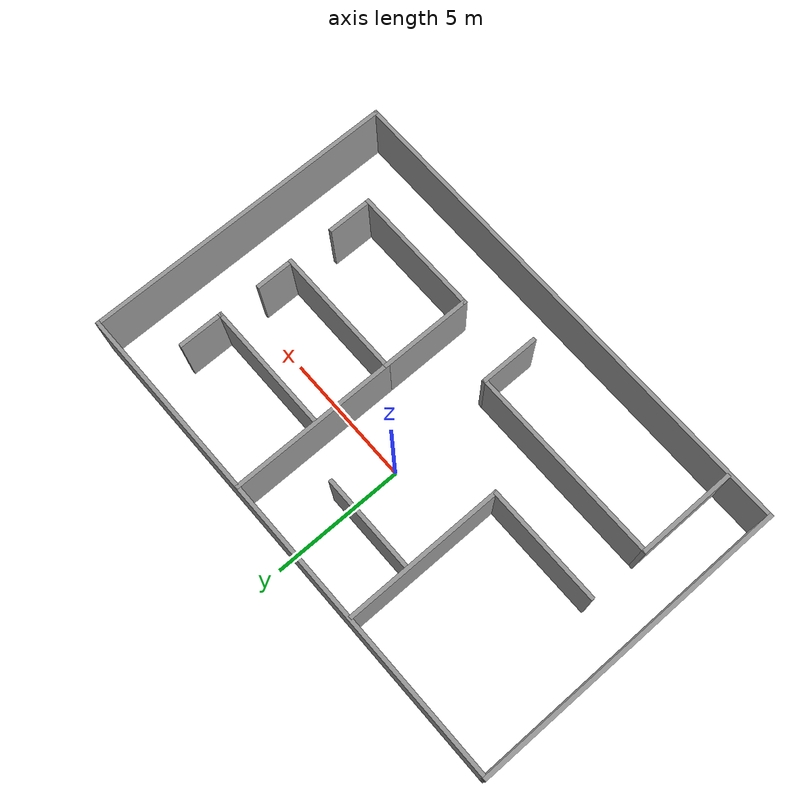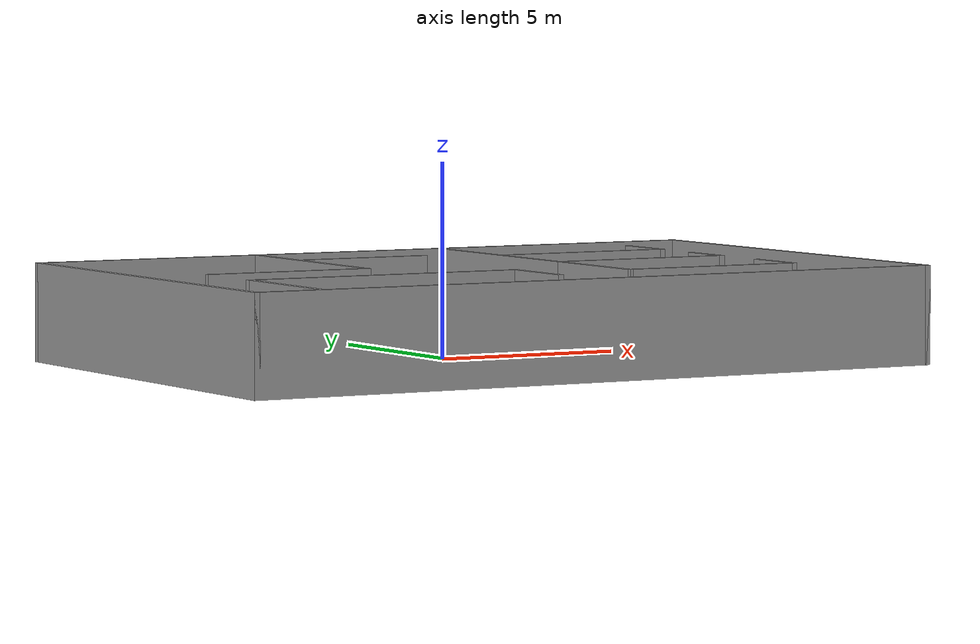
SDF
<?xml version='1.0'?>
<sdf version='1.6'>
  <model name='lab_envirenment'>
    <pose frame=''>0.225157 -1.55416 0 0 -0 0</pose>
    <link name='Wall_13'>
      <collision name='Wall_13_Collision'>
        <geometry>
          <box>
            <size>6 0.15 2.5</size>
          </box>
        </geometry>
        <pose frame=''>0 0 1.25 0 -0 0</pose>
      </collision>
      <visual name='Wall_13_Visual'>
        <pose frame=''>0 0 1.25 0 -0 0</pose>
        <geometry>
          <box>
            <size>6 0.15 2.5</size>
          </box>
        </geometry>
        <material>
          <script>
            <uri>file://media/materials/scripts/gazebo.material</uri>
            <name>Gazebo/Grey</name>
          </script>
          <ambient>1 1 1 1</ambient>
        </material>
        <meta>
          <layer>0</layer>
        </meta>
      </visual>
      <pose frame=''>-3.27349 2.91466 0 0 -0 -1.5708</pose>
    </link>
    <link name='Wall_14'>
      <collision name='Wall_14_Collision'>
        <geometry>
          <box>
            <size>4.5 0.15 2.5</size>
          </box>
        </geometry>
        <pose frame=''>0 0 1.25 0 -0 0</pose>
      </collision>
      <visual name='Wall_14_Visual'>
        <pose frame=''>0 0 1.25 0 -0 0</pose>
        <geometry>
          <box>
            <size>4.5 0.15 2.5</size>
          </box>
        </geometry>
        <material>
          <script>
            <uri>file://media/materials/scripts/gazebo.material</uri>
            <name>Gazebo/Grey</name>
          </script>
          <ambient>1 1 1 1</ambient>
        </material>
        <meta>
          <layer>0</layer>
        </meta>
      </visual>
      <pose frame=''>-5.44849 -0.010343 0 0 -0 3.14159</pose>
    </link>
    <link name='Wall_17'>
      <collision name='Wall_17_Collision'>
        <geometry>
          <box>
            <size>6.25 0.15 2.5</size>
          </box>
        </geometry>
        <pose frame=''>0 0 1.25 0 -0 0</pose>
      </collision>
      <visual name='Wall_17_Visual'>
        <pose frame=''>0 0 1.25 0 -0 0</pose>
        <geometry>
          <box>
            <size>6.25 0.15 2.5</size>
          </box>
        </geometry>
        <material>
          <script>
            <uri>file://media/materials/scripts/gazebo.material</uri>
            <name>Gazebo/Grey</name>
          </script>
          <ambient>1 1 1 1</ambient>
        </material>
        <meta>
          <layer>0</layer>
        </meta>
      </visual>
      <pose frame=''>2.16071 2.86033 0 0 -0 -1.5708</pose>
    </link>
    <link name='Wall_18'>
      <collision name='Wall_18_Collision'>
        <geometry>
          <box>
            <size>5 0.15 2.5</size>
          </box>
        </geometry>
        <pose frame=''>0 0 1.25 0 -0 0</pose>
      </collision>
      <visual name='Wall_18_Visual'>
        <pose frame=''>0 0 1.25 0 -0 0</pose>
        <geometry>
          <box>
            <size>5 0.15 2.5</size>
          </box>
        </geometry>
        <material>
          <script>
            <uri>file://media/materials/scripts/gazebo.material</uri>
            <name>Gazebo/Grey</name>
          </script>
          <ambient>1 1 1 1</ambient>
        </material>
        <meta>
          <layer>0</layer>
        </meta>
      </visual>
      <pose frame=''>4.58571 -0.189671 0 0 -0 0</pose>
    </link>
    <link name='Wall_2'>
      <collision name='Wall_2_Collision'>
        <geometry>
          <box>
            <size>19 0.15 2.5</size>
          </box>
        </geometry>
        <pose frame=''>0 0 1.25 0 -0 0</pose>
      </collision>
      <visual name='Wall_2_Visual'>
        <pose frame=''>0 0 1.25 0 -0 0</pose>
        <geometry>
          <box>
            <size>19 0.15 2.5</size>
          </box>
        </geometry>
        <material>
          <script>
            <uri>file://media/materials/scripts/gazebo.material</uri>
            <name>Gazebo/Grey</name>
          </script>
          <ambient>1 1 1 1</ambient>
        </material>
        <meta>
          <layer>0</layer>
        </meta>
      </visual>
      <pose frame=''>0 5.925 0 0 -0 0</pose>
    </link>
    <link name='Wall_20'>
      <collision name='Wall_20_Collision'>
        <geometry>
          <box>
            <size>3.5 0.15 2.5</size>
          </box>
        </geometry>
        <pose frame=''>0 0 1.25 0 -0 0</pose>
      </collision>
      <visual name='Wall_20_Visual'>
        <pose frame=''>0 0 1.25 0 -0 0</pose>
        <geometry>
          <box>
            <size>3.5 0.15 2.5</size>
          </box>
        </geometry>
        <material>
          <script>
            <uri>file://media/materials/scripts/gazebo.material</uri>
            <name>Gazebo/Grey</name>
          </script>
          <ambient>1 1 1 1</ambient>
        </material>
        <meta>
          <layer>0</layer>
        </meta>
      </visual>
      <pose frame=''>2.16071 -1.86467 0 0 -0 -1.5708</pose>
    </link>
    <link name='Wall_21'>
      <collision name='Wall_21_Collision'>
        <geometry>
          <box>
            <size>5 0.15 2.5</size>
          </box>
        </geometry>
        <pose frame=''>0 0 1.25 0 -0 0</pose>
      </collision>
      <visual name='Wall_21_Visual'>
        <pose frame=''>0 0 1.25 0 -0 0</pose>
        <geometry>
          <box>
            <size>5 0.15 2.5</size>
          </box>
        </geometry>
        <material>
          <script>
            <uri>file://media/materials/scripts/gazebo.material</uri>
            <name>Gazebo/Grey</name>
          </script>
          <ambient>1 1 1 1</ambient>
        </material>
        <meta>
          <layer>0</layer>
        </meta>
      </visual>
      <pose frame=''>4.58571 -3.53967 0 0 -0 0</pose>
    </link>
    <link name='Wall_23'>
      <collision name='Wall_23_Collision'>
        <geometry>
          <box>
            <size>5 0.15 2.5</size>
          </box>
        </geometry>
        <pose frame=''>0 0 1.25 0 -0 0</pose>
      </collision>
      <visual name='Wall_23_Visual'>
        <pose frame=''>0 0 1.25 0 -0 0</pose>
        <geometry>
          <box>
            <size>5 0.15 2.5</size>
          </box>
        </geometry>
        <material>
          <script>
            <uri>file://media/materials/scripts/gazebo.material</uri>
            <name>Gazebo/Grey</name>
          </script>
          <ambient>1 1 1 1</ambient>
        </material>
        <meta>
          <layer>0</layer>
        </meta>
      </visual>
      <pose frame=''>4.62325 2.7378 0 0 -0 0</pose>
    </link>
    <link name='Wall_27'>
      <collision name='Wall_27_Collision'>
        <geometry>
          <box>
            <size>3.75 0.15 2.5</size>
          </box>
        </geometry>
        <pose frame=''>0 0 1.25 0 -0 0</pose>
      </collision>
      <visual name='Wall_27_Visual'>
        <pose frame=''>0 0 1.25 0 -0 0</pose>
        <geometry>
          <box>
            <size>3.75 0.15 2.5</size>
          </box>
        </geometry>
        <material>
          <script>
            <uri>file://media/materials/scripts/gazebo.material</uri>
            <name>Gazebo/Grey</name>
          </script>
          <ambient>1 1 1 1</ambient>
        </material>
        <meta>
          <layer>0</layer>
        </meta>
      </visual>
      <pose frame=''>-7.6574 -4.03025 0 0 -0 -1.5708</pose>
    </link>
    <link name='Wall_29'>
      <collision name='Wall_29_Collision'>
        <geometry>
          <box>
            <size>7.5 0.15 2.5</size>
          </box>
        </geometry>
        <pose frame=''>0 0 1.25 0 -0 0</pose>
      </collision>
      <visual name='Wall_29_Visual'>
        <pose frame=''>0 0 1.25 0 -0 0</pose>
        <geometry>
          <box>
            <size>7.5 0.15 2.5</size>
          </box>
        </geometry>
        <material>
          <script>
            <uri>file://media/materials/scripts/gazebo.material</uri>
            <name>Gazebo/Grey</name>
          </script>
          <ambient>1 1 1 1</ambient>
        </material>
        <meta>
          <layer>0</layer>
        </meta>
      </visual>
      <pose frame=''>-3.9824 -2.23026 0 0 -0 0</pose>
    </link>
    <link name='Wall_30'>
      <collision name='Wall_30_Collision'>
        <geometry>
          <box>
            <size>2.25 0.15 2.5</size>
          </box>
        </geometry>
        <pose frame=''>0 0 1.25 0 -0 0</pose>
      </collision>
      <visual name='Wall_30_Visual'>
        <pose frame=''>0 0 1.25 0 -0 0</pose>
        <geometry>
          <box>
            <size>2.25 0.15 2.5</size>
          </box>
        </geometry>
        <material>
          <script>
            <uri>file://media/materials/scripts/gazebo.material</uri>
            <name>Gazebo/Grey</name>
          </script>
          <ambient>1 1 1 1</ambient>
        </material>
        <meta>
          <layer>0</layer>
        </meta>
      </visual>
      <pose frame=''>-0.3074 -3.28025 0 0 -0 -1.5708</pose>
    </link>
    <link name='Wall_32'>
      <collision name='Wall_32_Collision'>
        <geometry>
          <box>
            <size>1.75 0.15 2.5</size>
          </box>
        </geometry>
        <pose frame=''>0 0 1.25 0 -0 0</pose>
      </collision>
      <visual name='Wall_32_Visual'>
        <pose frame=''>0 0 1.25 0 -0 0</pose>
        <geometry>
          <box>
            <size>1.75 0.15 2.5</size>
          </box>
        </geometry>
        <material>
          <script>
            <uri>file://media/materials/scripts/gazebo.material</uri>
            <name>Gazebo/Grey</name>
          </script>
          <ambient>1 1 1 1</ambient>
        </material>
        <meta>
          <layer>0</layer>
        </meta>
      </visual>
      <pose frame=''>7.01071 -2.73967 0 0 -0 1.5708</pose>
    </link>
    <link name='Wall_34'>
      <collision name='Wall_34_Collision'>
        <geometry>
          <box>
            <size>1.5 0.15 2.5</size>
          </box>
        </geometry>
        <pose frame=''>0 0 1.25 0 -0 0</pose>
      </collision>
      <visual name='Wall_34_Visual'>
        <pose frame=''>0 0 1.25 0 -0 0</pose>
        <geometry>
          <box>
            <size>1.5 0.15 2.5</size>
          </box>
        </geometry>
        <material>
          <script>
            <uri>file://media/materials/scripts/gazebo.material</uri>
            <name>Gazebo/Grey</name>
          </script>
          <ambient>1 1 1 1</ambient>
        </material>
        <meta>
          <layer>0</layer>
        </meta>
      </visual>
      <pose frame=''>7.01071 0.485329 0 0 -0 1.5708</pose>
    </link>
    <link name='Wall_36'>
      <collision name='Wall_36_Collision'>
        <geometry>
          <box>
            <size>1.75 0.15 2.5</size>
          </box>
        </geometry>
        <pose frame=''>0 0 1.25 0 -0 0</pose>
      </collision>
      <visual name='Wall_36_Visual'>
        <pose frame=''>0 0 1.25 0 -0 0</pose>
        <geometry>
          <box>
            <size>1.75 0.15 2.5</size>
          </box>
        </geometry>
        <material>
          <script>
            <uri>file://media/materials/scripts/gazebo.material</uri>
            <name>Gazebo/Grey</name>
          </script>
          <ambient>1 1 1 1</ambient>
        </material>
        <meta>
          <layer>0</layer>
        </meta>
      </visual>
      <pose frame=''>7.04825 3.5378 0 0 -0 1.5708</pose>
    </link>
    <link name='Wall_38'>
      <collision name='Wall_38_Collision'>
        <geometry>
          <box>
            <size>3.75 0.15 2.5</size>
          </box>
        </geometry>
        <pose frame=''>0 0 1.25 0 -0 0</pose>
      </collision>
      <visual name='Wall_38_Visual'>
        <pose frame=''>0 0 1.25 0 -0 0</pose>
        <geometry>
          <box>
            <size>3.75 0.15 2.5</size>
          </box>
        </geometry>
        <material>
          <script>
            <uri>file://media/materials/scripts/gazebo.material</uri>
            <name>Gazebo/Grey</name>
          </script>
          <ambient>1 1 1 1</ambient>
        </material>
        <meta>
          <layer>0</layer>
        </meta>
      </visual>
      <pose frame=''>-1.4403 3.60452 0 0 -0 0</pose>
    </link>
    <link name='Wall_4'>
      <collision name='Wall_4_Collision'>
        <geometry>
          <box>
            <size>12 0.15 2.5</size>
          </box>
        </geometry>
        <pose frame=''>0 0 1.25 0 -0 0</pose>
      </collision>
      <visual name='Wall_4_Visual'>
        <pose frame=''>0 0 1.25 0 -0 0</pose>
        <geometry>
          <box>
            <size>12 0.15 2.5</size>
          </box>
        </geometry>
        <material>
          <script>
            <uri>file://media/materials/scripts/gazebo.material</uri>
            <name>Gazebo/Grey</name>
          </script>
          <ambient>1 1 1 1</ambient>
        </material>
        <meta>
          <layer>0</layer>
        </meta>
      </visual>
      <pose frame=''>9.425 0 0 0 -0 -1.5708</pose>
    </link>
    <link name='Wall_6'>
      <collision name='Wall_6_Collision'>
        <geometry>
          <box>
            <size>12 0.15 2.5</size>
          </box>
        </geometry>
        <pose frame=''>0 0 1.25 0 -0 0</pose>
      </collision>
      <visual name='Wall_6_Visual'>
        <pose frame=''>0 0 1.25 0 -0 0</pose>
        <geometry>
          <box>
            <size>12 0.15 2.5</size>
          </box>
        </geometry>
        <material>
          <script>
            <uri>file://media/materials/scripts/gazebo.material</uri>
            <name>Gazebo/Grey</name>
          </script>
          <ambient>1 1 1 1</ambient>
        </material>
        <meta>
          <layer>0</layer>
        </meta>
      </visual>
      <pose frame=''>-9.425 0 0 0 -0 -1.5708</pose>
    </link>
    <link name='Wall_8'>
      <collision name='Wall_8_Collision'>
        <geometry>
          <box>
            <size>19 0.15 2.5</size>
          </box>
        </geometry>
        <pose frame=''>0 0 1.25 0 -0 0</pose>
      </collision>
      <visual name='Wall_8_Visual'>
        <pose frame=''>0 0 1.25 0 -0 0</pose>
        <geometry>
          <box>
            <size>19 0.15 2.5</size>
          </box>
        </geometry>
        <material>
          <script>
            <uri>file://media/materials/scripts/gazebo.material</uri>
            <name>Gazebo/Grey</name>
          </script>
          <ambient>1 1 1 1</ambient>
        </material>
        <meta>
          <layer>0</layer>
        </meta>
      </visual>
      <pose frame=''>0 -5.925 0 0 -0 0</pose>
    </link>
    <static>1</static>
  </model>
</sdf>
